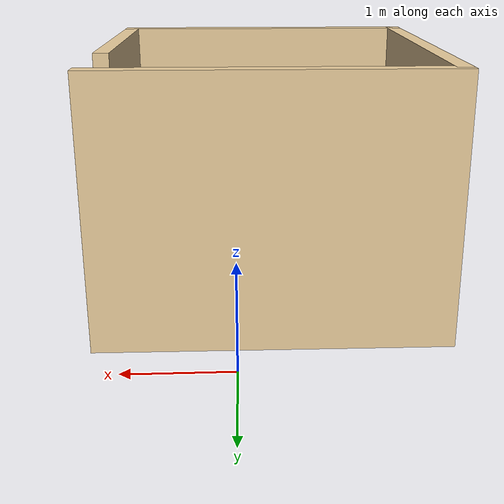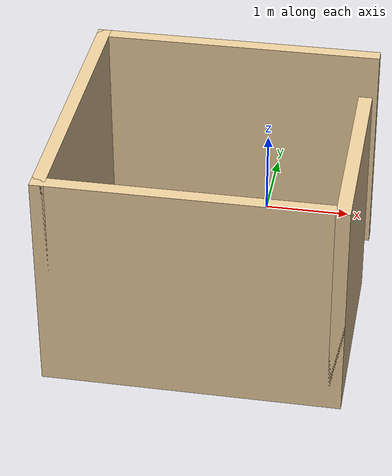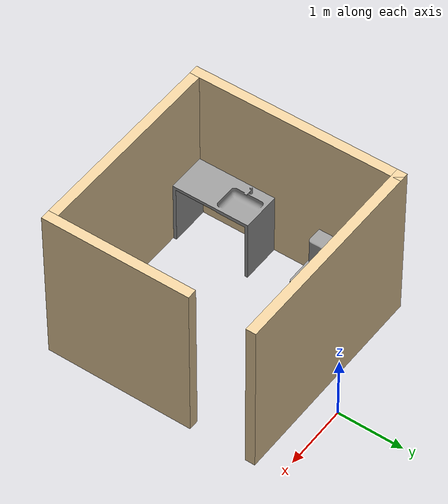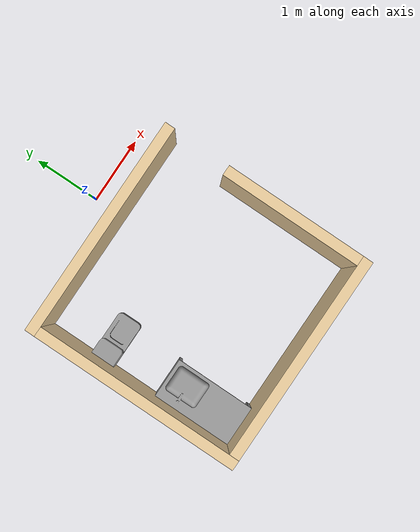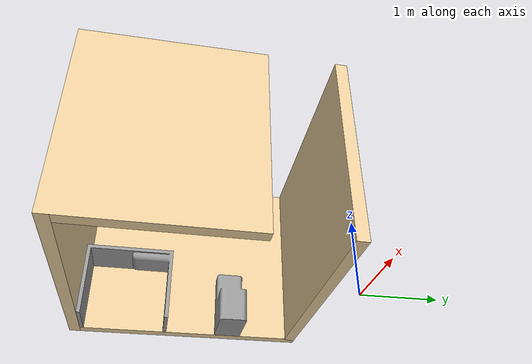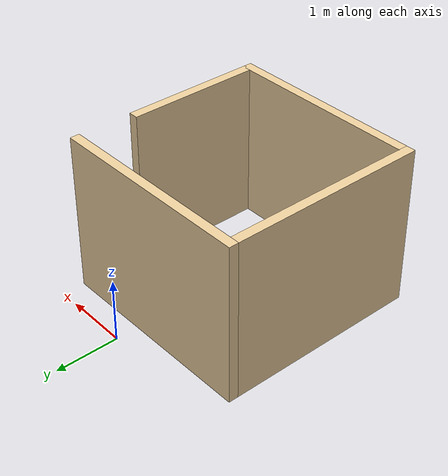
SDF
<?xml version='1.0'?>
<sdf version='1.7'>
  <model name='bathroom'>
    <link name='Wall_0'>
      <pose>-0.3225 -0.4325 0 0 -0 3.14159</pose>
      <self_collide>0</self_collide>
      <enable_wind>0</enable_wind>
      <kinematic>0</kinematic>
      <visual name='Wall_0_Visual'>
        <pose>0 0 1.25 0 -0 0</pose>
        <geometry>
          <box>
            <size>3.25 0.15 2.5</size>
          </box>
        </geometry>
        <material>
          <script>
            <uri>file://media/materials/scripts/gazebo.material</uri>
            <name>Gazebo/Grey</name>
          </script>
          <ambient>0.921569 0.807843 0.615686 1</ambient>
          <shader type='pixel'/>
        </material>
        <meta>
          <layer>0</layer>
        </meta>
        <transparency>0</transparency>
        <cast_shadows>1</cast_shadows>
      </visual>
      <collision name='Wall_0_Collision'>
        <laser_retro>0</laser_retro>
        <max_contacts>10</max_contacts>
        <pose>0 0 1.25 0 -0 0</pose>
        <geometry>
          <box>
            <size>3.25 0.15 2.5</size>
          </box>
        </geometry>
        <surface>
          <friction>
            <ode>
              <mu>1</mu>
              <mu2>1</mu2>
              <fdir1>0 0 0</fdir1>
              <slip1>0</slip1>
              <slip2>0</slip2>
            </ode>
            <torsional>
              <coefficient>1</coefficient>
              <patch_radius>0</patch_radius>
              <surface_radius>0</surface_radius>
              <use_patch_radius>1</use_patch_radius>
              <ode>
                <slip>0</slip>
              </ode>
            </torsional>
          </friction>
          <bounce>
            <restitution_coefficient>0</restitution_coefficient>
            <threshold>1e+06</threshold>
          </bounce>
          <contact>
            <collide_without_contact>0</collide_without_contact>
            <collide_without_contact_bitmask>1</collide_without_contact_bitmask>
            <collide_bitmask>1</collide_bitmask>
            <ode>
              <soft_cfm>0</soft_cfm>
              <soft_erp>0.2</soft_erp>
              <kp>1e+13</kp>
              <kd>1</kd>
              <max_vel>0.01</max_vel>
              <min_depth>0</min_depth>
            </ode>
            <bullet>
              <split_impulse>1</split_impulse>
              <split_impulse_penetration_threshold>-0.01</split_impulse_penetration_threshold>
              <soft_cfm>0</soft_cfm>
              <soft_erp>0.2</soft_erp>
              <kp>1e+13</kp>
              <kd>1</kd>
            </bullet>
          </contact>
        </surface>
      </collision>
    </link>
    <link name='Wall_1'>
      <pose>-1.8725 -1.9825 0 0 0 -1.5708</pose>
      <self_collide>0</self_collide>
      <enable_wind>0</enable_wind>
      <kinematic>0</kinematic>
      <visual name='Wall_1_Visual'>
        <pose>0 0 1.25 0 -0 0</pose>
        <geometry>
          <box>
            <size>3.25 0.15 2.5</size>
          </box>
        </geometry>
        <material>
          <script>
            <uri>file://media/materials/scripts/gazebo.material</uri>
            <name>Gazebo/Grey</name>
          </script>
          <ambient>0.921569 0.807843 0.615686 1</ambient>
          <shader type='pixel'/>
        </material>
        <meta>
          <layer>0</layer>
        </meta>
        <transparency>0</transparency>
        <cast_shadows>1</cast_shadows>
      </visual>
      <collision name='Wall_1_Collision'>
        <laser_retro>0</laser_retro>
        <max_contacts>10</max_contacts>
        <pose>0 0 1.25 0 -0 0</pose>
        <geometry>
          <box>
            <size>3.25 0.15 2.5</size>
          </box>
        </geometry>
        <surface>
          <friction>
            <ode>
              <mu>1</mu>
              <mu2>1</mu2>
              <fdir1>0 0 0</fdir1>
              <slip1>0</slip1>
              <slip2>0</slip2>
            </ode>
            <torsional>
              <coefficient>1</coefficient>
              <patch_radius>0</patch_radius>
              <surface_radius>0</surface_radius>
              <use_patch_radius>1</use_patch_radius>
              <ode>
                <slip>0</slip>
              </ode>
            </torsional>
          </friction>
          <bounce>
            <restitution_coefficient>0</restitution_coefficient>
            <threshold>1e+06</threshold>
          </bounce>
          <contact>
            <collide_without_contact>0</collide_without_contact>
            <collide_without_contact_bitmask>1</collide_without_contact_bitmask>
            <collide_bitmask>1</collide_bitmask>
            <ode>
              <soft_cfm>0</soft_cfm>
              <soft_erp>0.2</soft_erp>
              <kp>1e+13</kp>
              <kd>1</kd>
              <max_vel>0.01</max_vel>
              <min_depth>0</min_depth>
            </ode>
            <bullet>
              <split_impulse>1</split_impulse>
              <split_impulse_penetration_threshold>-0.01</split_impulse_penetration_threshold>
              <soft_cfm>0</soft_cfm>
              <soft_erp>0.2</soft_erp>
              <kp>1e+13</kp>
              <kd>1</kd>
            </bullet>
          </contact>
        </surface>
      </collision>
    </link>
    <link name='Wall_2'>
      <pose>-0.3225 -3.5325 0 0 -0 0</pose>
      <self_collide>0</self_collide>
      <enable_wind>0</enable_wind>
      <kinematic>0</kinematic>
      <visual name='Wall_2_Visual'>
        <pose>0 0 1.25 0 -0 0</pose>
        <geometry>
          <box>
            <size>3.25 0.15 2.5</size>
          </box>
        </geometry>
        <material>
          <script>
            <uri>file://media/materials/scripts/gazebo.material</uri>
            <name>Gazebo/Grey</name>
          </script>
          <ambient>0.921569 0.807843 0.615686 1</ambient>
          <shader type='pixel'/>
        </material>
        <meta>
          <layer>0</layer>
        </meta>
        <transparency>0</transparency>
        <cast_shadows>1</cast_shadows>
      </visual>
      <collision name='Wall_2_Collision'>
        <laser_retro>0</laser_retro>
        <max_contacts>10</max_contacts>
        <pose>0 0 1.25 0 -0 0</pose>
        <geometry>
          <box>
            <size>3.25 0.15 2.5</size>
          </box>
        </geometry>
        <surface>
          <friction>
            <ode>
              <mu>1</mu>
              <mu2>1</mu2>
              <fdir1>0 0 0</fdir1>
              <slip1>0</slip1>
              <slip2>0</slip2>
            </ode>
            <torsional>
              <coefficient>1</coefficient>
              <patch_radius>0</patch_radius>
              <surface_radius>0</surface_radius>
              <use_patch_radius>1</use_patch_radius>
              <ode>
                <slip>0</slip>
              </ode>
            </torsional>
          </friction>
          <bounce>
            <restitution_coefficient>0</restitution_coefficient>
            <threshold>1e+06</threshold>
          </bounce>
          <contact>
            <collide_without_contact>0</collide_without_contact>
            <collide_without_contact_bitmask>1</collide_without_contact_bitmask>
            <collide_bitmask>1</collide_bitmask>
            <ode>
              <soft_cfm>0</soft_cfm>
              <soft_erp>0.2</soft_erp>
              <kp>1e+13</kp>
              <kd>1</kd>
              <max_vel>0.01</max_vel>
              <min_depth>0</min_depth>
            </ode>
            <bullet>
              <split_impulse>1</split_impulse>
              <split_impulse_penetration_threshold>-0.01</split_impulse_penetration_threshold>
              <soft_cfm>0</soft_cfm>
              <soft_erp>0.2</soft_erp>
              <kp>1e+13</kp>
              <kd>1</kd>
            </bullet>
          </contact>
        </surface>
      </collision>
    </link>
    <link name='Wall_3'>
      <pose>1.2275 -2.4825 0 0 -0 1.5708</pose>
      <self_collide>0</self_collide>
      <enable_wind>0</enable_wind>
      <kinematic>0</kinematic>
      <visual name='Wall_3_Visual'>
        <pose>0 0 1.25 0 -0 0</pose>
        <geometry>
          <box>
            <size>2.25 0.15 2.5</size>
          </box>
        </geometry>
        <material>
          <script>
            <uri>file://media/materials/scripts/gazebo.material</uri>
            <name>Gazebo/Grey</name>
          </script>
          <ambient>0.921569 0.807843 0.615686 1</ambient>
          <shader type='pixel'/>
        </material>
        <meta>
          <layer>0</layer>
        </meta>
        <transparency>0</transparency>
        <cast_shadows>1</cast_shadows>
      </visual>
      <collision name='Wall_3_Collision'>
        <laser_retro>0</laser_retro>
        <max_contacts>10</max_contacts>
        <pose>0 0 1.25 0 -0 0</pose>
        <geometry>
          <box>
            <size>2.25 0.15 2.5</size>
          </box>
        </geometry>
        <surface>
          <friction>
            <ode>
              <mu>1</mu>
              <mu2>1</mu2>
              <fdir1>0 0 0</fdir1>
              <slip1>0</slip1>
              <slip2>0</slip2>
            </ode>
            <torsional>
              <coefficient>1</coefficient>
              <patch_radius>0</patch_radius>
              <surface_radius>0</surface_radius>
              <use_patch_radius>1</use_patch_radius>
              <ode>
                <slip>0</slip>
              </ode>
            </torsional>
          </friction>
          <bounce>
            <restitution_coefficient>0</restitution_coefficient>
            <threshold>1e+06</threshold>
          </bounce>
          <contact>
            <collide_without_contact>0</collide_without_contact>
            <collide_without_contact_bitmask>1</collide_without_contact_bitmask>
            <collide_bitmask>1</collide_bitmask>
            <ode>
              <soft_cfm>0</soft_cfm>
              <soft_erp>0.2</soft_erp>
              <kp>1e+13</kp>
              <kd>1</kd>
              <max_vel>0.01</max_vel>
              <min_depth>0</min_depth>
            </ode>
            <bullet>
              <split_impulse>1</split_impulse>
              <split_impulse_penetration_threshold>-0.01</split_impulse_penetration_threshold>
              <soft_cfm>0</soft_cfm>
              <soft_erp>0.2</soft_erp>
              <kp>1e+13</kp>
              <kd>1</kd>
            </bullet>
          </contact>
        </surface>
      </collision>
    </link>
    <link name='link_0'>
      <inertial>
        <mass>1</mass>
        <inertia>
          <ixx>0.166667</ixx>
          <ixy>0</ixy>
          <ixz>0</ixz>
          <iyy>0.166667</iyy>
          <iyz>0</iyz>
          <izz>0.166667</izz>
        </inertia>
        <pose>0 0 0 0 -0 0</pose>
      </inertial>
      <pose>-1.49418 -2.85672 0 0 -0 0</pose>
      <gravity>1</gravity>
      <self_collide>0</self_collide>
      <kinematic>0</kinematic>
      <enable_wind>0</enable_wind>
      <visual name='visual'>
        <pose>0 0 0 0 -0 0</pose>
        <geometry>
          <mesh>
            <uri>/home/devadathpr/catkin_ws/src/RoboJyothianz/assets/models/STL/counter.stl</uri>
            <scale>1 1 1</scale>
          </mesh>
        </geometry>
        <material>
          <lighting>1</lighting>
          <script>
            <uri>file://media/materials/scripts/gazebo.material</uri>
            <name>Gazebo/Grey</name>
          </script>
          <shader type='pixel'>
            <normal_map>__default__</normal_map>
          </shader>
          <ambient>0.827 0.843 0.812 1</ambient>
          <diffuse>0.933 0.933 0.925 1</diffuse>
          <specular>0.01 0.01 0.01 1</specular>
          <emissive>0 0 0 1</emissive>
        </material>
        <transparency>0</transparency>
        <cast_shadows>1</cast_shadows>
      </visual>
      <collision name='collision'>
        <laser_retro>0</laser_retro>
        <max_contacts>10</max_contacts>
        <pose>0 0 0 0 -0 0</pose>
        <geometry>
          <mesh>
            <uri>/home/devadathpr/catkin_ws/src/RoboJyothianz/assets/models/STL/counter.stl</uri>
            <scale>1 1 1</scale>
          </mesh>
        </geometry>
        <surface>
          <friction>
            <ode>
              <mu>1</mu>
              <mu2>1</mu2>
              <fdir1>0 0 0</fdir1>
              <slip1>0</slip1>
              <slip2>0</slip2>
            </ode>
            <torsional>
              <coefficient>1</coefficient>
              <patch_radius>0</patch_radius>
              <surface_radius>0</surface_radius>
              <use_patch_radius>1</use_patch_radius>
              <ode>
                <slip>0</slip>
              </ode>
            </torsional>
          </friction>
          <bounce>
            <restitution_coefficient>0</restitution_coefficient>
            <threshold>1e+06</threshold>
          </bounce>
          <contact>
            <collide_without_contact>0</collide_without_contact>
            <collide_without_contact_bitmask>1</collide_without_contact_bitmask>
            <collide_bitmask>1</collide_bitmask>
            <ode>
              <soft_cfm>0</soft_cfm>
              <soft_erp>0.2</soft_erp>
              <kp>1e+13</kp>
              <kd>1</kd>
              <max_vel>0.01</max_vel>
              <min_depth>0</min_depth>
            </ode>
            <bullet>
              <split_impulse>1</split_impulse>
              <split_impulse_penetration_threshold>-0.01</split_impulse_penetration_threshold>
              <soft_cfm>0</soft_cfm>
              <soft_erp>0.2</soft_erp>
              <kp>1e+13</kp>
              <kd>1</kd>
            </bullet>
          </contact>
        </surface>
      </collision>
    </link>
    <link name='link_1'>
      <inertial>
        <mass>1</mass>
        <inertia>
          <ixx>0.166667</ixx>
          <ixy>0</ixy>
          <ixz>0</ixz>
          <iyy>0.166667</iyy>
          <iyz>0</iyz>
          <izz>0.166667</izz>
        </inertia>
        <pose>0 0 0 0 -0 0</pose>
      </inertial>
      <pose>-1.4563 -1.37621 0 0 -0 0</pose>
      <gravity>1</gravity>
      <self_collide>0</self_collide>
      <kinematic>0</kinematic>
      <enable_wind>0</enable_wind>
      <visual name='visual'>
        <pose>0 0 0 0 -0 0</pose>
        <geometry>
          <mesh>
            <uri>/home/devadathpr/catkin_ws/src/RoboJyothianz/assets/models/STL/commode.stl</uri>
            <scale>1 1 1</scale>
          </mesh>
        </geometry>
        <material>
          <lighting>1</lighting>
          <script>
            <uri>file://media/materials/scripts/gazebo.material</uri>
            <name>Gazebo/Grey</name>
          </script>
          <shader type='pixel'>
            <normal_map>__default__</normal_map>
          </shader>
          <ambient>0.827 0.843 0.812 1</ambient>
          <diffuse>0.933 0.933 0.925 1</diffuse>
          <specular>0.01 0.01 0.01 1</specular>
          <emissive>0 0 0 1</emissive>
        </material>
        <transparency>0</transparency>
        <cast_shadows>1</cast_shadows>
      </visual>
      <collision name='collision'>
        <laser_retro>0</laser_retro>
        <max_contacts>10</max_contacts>
        <pose>0 0 0 0 -0 0</pose>
        <geometry>
          <mesh>
            <uri>/home/devadathpr/catkin_ws/src/RoboJyothianz/assets/models/STL/commode.stl</uri>
            <scale>1 1 1</scale>
          </mesh>
        </geometry>
        <surface>
          <friction>
            <ode>
              <mu>1</mu>
              <mu2>1</mu2>
              <fdir1>0 0 0</fdir1>
              <slip1>0</slip1>
              <slip2>0</slip2>
            </ode>
            <torsional>
              <coefficient>1</coefficient>
              <patch_radius>0</patch_radius>
              <surface_radius>0</surface_radius>
              <use_patch_radius>1</use_patch_radius>
              <ode>
                <slip>0</slip>
              </ode>
            </torsional>
          </friction>
          <bounce>
            <restitution_coefficient>0</restitution_coefficient>
            <threshold>1e+06</threshold>
          </bounce>
          <contact>
            <collide_without_contact>0</collide_without_contact>
            <collide_without_contact_bitmask>1</collide_without_contact_bitmask>
            <collide_bitmask>1</collide_bitmask>
            <ode>
              <soft_cfm>0</soft_cfm>
              <soft_erp>0.2</soft_erp>
              <kp>1e+13</kp>
              <kd>1</kd>
              <max_vel>0.01</max_vel>
              <min_depth>0</min_depth>
            </ode>
            <bullet>
              <split_impulse>1</split_impulse>
              <split_impulse_penetration_threshold>-0.01</split_impulse_penetration_threshold>
              <soft_cfm>0</soft_cfm>
              <soft_erp>0.2</soft_erp>
              <kp>1e+13</kp>
              <kd>1</kd>
            </bullet>
          </contact>
        </surface>
      </collision>
    </link>
    <static>1</static>
    <allow_auto_disable>1</allow_auto_disable>
  </model>
</sdf>
